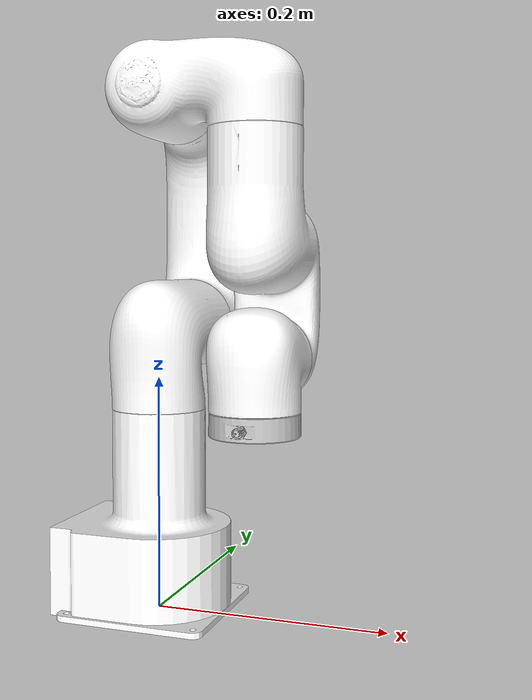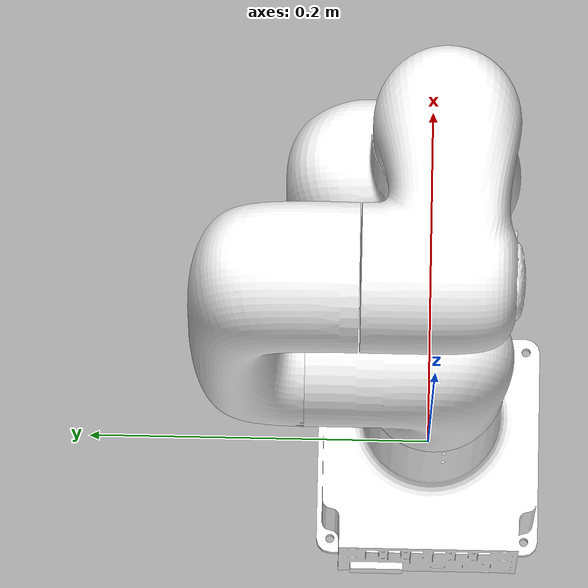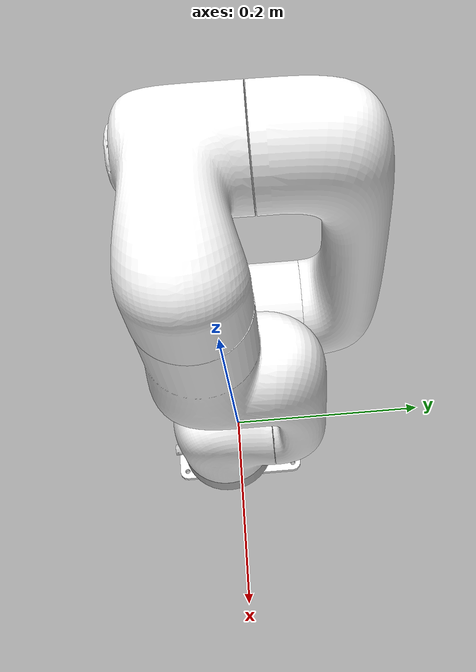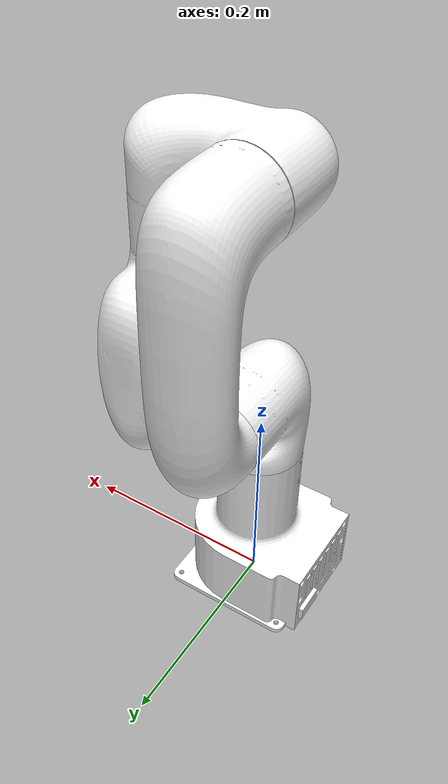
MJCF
<?xml version="1.0" ?>
<mujoco model="ufactory_lite6">
	<compiler meshdir="ufactory_lite6/meshes" texturedir="ufactory_lite6/textures" angle="radian" autolimits="true" balanceinertia="true" boundmass="0.000001" boundinertia="0.000001"/>
	<default>
		<default class="visual">
			<geom contype="0" conaffinity="0"/>
		</default>
		<default class="collision">
			<geom rgba="1.0 0.0 0.0 0.0"/>
		</default>
	</default>
	<asset>
		<mesh name="link_base" file="stl/link_base.stl" scale="1.0 1.0 1.0"/>
		<mesh name="link_base_c" file="stl/link_base_c.stl" scale="1.0 1.0 1.0"/>
		<mesh name="link1" file="stl/link1.stl" scale="1.0 1.0 1.0"/>
		<mesh name="link1_c" file="stl/link1_c.stl" scale="1.0 1.0 1.0"/>
		<mesh name="link2" file="stl/link2.stl" scale="1.0 1.0 1.0"/>
		<mesh name="link2_c" file="stl/link2_c.stl" scale="1.0 1.0 1.0"/>
		<mesh name="link3" file="stl/link3.stl" scale="1.0 1.0 1.0"/>
		<mesh name="link3_c" file="stl/link3_c.stl" scale="1.0 1.0 1.0"/>
		<mesh name="link4" file="stl/link4.stl" scale="1.0 1.0 1.0"/>
		<mesh name="link4_c" file="stl/link4_c.stl" scale="1.0 1.0 1.0"/>
		<mesh name="link5" file="stl/link5.stl" scale="1.0 1.0 1.0"/>
		<mesh name="link5_c" file="stl/link5_c.stl" scale="1.0 1.0 1.0"/>
		<mesh name="link6" file="stl/link6.stl" scale="1.0 1.0 1.0"/>
		<mesh name="link6_c" file="stl/link6_c.stl" scale="1.0 1.0 1.0"/>
		<material name="white" rgba="1.0 1.0 1.0 1.0" emission="0.0" specular="0.5"/>
		<material name="silver" rgba="0.753000020980835 0.753000020980835 0.753000020980835 1.0" emission="0.0" specular="0.5"/>
	</asset>
	<worldbody>
		<body name="ufactory_lite6" pos="0.0 0.0 0.0" quat="1.0 0.0 0.0 0.0">
			<body name="link_base" pos="0.0 0.0 0.0" quat="1.0 0.0 0.0 0.0">
				<geom name="Geom_0" type="mesh" pos="-0.00811403151601553 0.00012629086268134415 0.060304343700408936" quat="0.7137697339057922 0.0576835535466671 0.05623916536569595 0.6957316994667053" mesh="link_base" material="white" class="visual"/>
				<geom name="Geom_1" type="mesh" pos="-0.008289423771202564 0.0001413146819686517 0.06018092855811119" quat="0.7142898440361023 0.05834497511386871 0.056573424488306046 0.695115327835083" mesh="link_base_c" class="collision"/>
				<body name="link1" pos="0.0 0.0 0.2434999942779541" quat="1.0 0.0 0.0 0.0">
					<inertial mass="1.4110000133514404" pos="-0.0003600000054575503 0.04194999858736992 -0.0024999999441206455" quat="0.6080588698387146 0.7923488020896912 -0.04387069121003151 0.022871794179081917" diaginertia="0.001452759956009686 0.0013527499977499247 0.0008533549844287336"/>
					<geom name="Geom_2" type="mesh" pos="-1.670528763497714e-05 0.018966035917401314 -0.012274348177015781" quat="0.4585404694080353 0.8886730670928955 -0.0008872973266988993 1.001599866867764e-05" mesh="link1" material="white" class="visual"/>
					<geom name="Geom_3" type="mesh" pos="-7.627058948855847e-05 0.018666492775082588 -0.012476584874093533" quat="0.4599464535713196 0.8879438638687134 -0.002075828844681382 0.0007998690125532448" mesh="link1_c" class="collision"/>
					<joint name="joint1" type="hinge" pos="0.0 0.0 0.0" range="-6.28318977355957 6.28318977355957" axis="0.0 0.0 1.0"/>
					<body name="link2" pos="0.0 0.0 0.0" quat="-0.5 0.5 0.5 0.5">
						<inertial mass="1.340000033378601" pos="0.17900000512599945 0.0 0.058400001376867294" quat="0.41756099462509155 0.5716190338134766 0.5695850253105164 0.41769298911094666" diaginertia="0.005609709769487381 0.005215200129896402 0.0012201799545437098"/>
						<geom name="Geom_4" type="mesh" pos="0.11914435029029846 -2.0014167034787533e-07 0.09462665766477585" quat="0.4695463478565216 0.528713583946228 0.5286215543746948 0.46962475776672363" mesh="link2" material="white" class="visual"/>
						<geom name="Geom_5" type="mesh" pos="0.11872807890176773 -3.716583159985021e-05 0.09475217014551163" quat="0.47368741035461426 0.5243798494338989 0.5319745540618896 0.4665287733078003" mesh="link2_c" class="collision"/>
						<joint name="joint2" type="hinge" pos="0.0 0.0 0.0" range="-2.617990016937256 2.617990016937256" axis="0.0 0.0 1.0"/>
						<body name="link3" pos="0.20020000636577606 0.0 0.0" quat="-2.5973411084123654e-06 -0.707105278968811 -0.7071082592010498 -2.597351112854085e-06">
							<inertial mass="0.953000009059906" pos="0.07199999690055847 -0.0357000008225441 -0.0010000000474974513" quat="0.12825897336006165 0.6629629135131836 -0.1672559678554535 0.7183699011802673" diaginertia="0.0018521000165492296 0.0017554600490257144 0.0007038069888949394"/>
							<geom name="Geom_6" type="mesh" pos="0.03540295362472534 -0.0005778800114057958 -0.0002281995548401028" quat="0.537189781665802 0.48910239338874817 0.49653613567352295 0.47503456473350525" mesh="link3" material="white" class="visual"/>
							<geom name="Geom_7" type="mesh" pos="0.035833150148391724 -0.0006497979629784822 -0.0007481405045837164" quat="0.542108952999115 0.4854326546192169 0.4935319125652313 0.4763394296169281" mesh="link3_c" class="collision"/>
							<joint name="joint3" type="hinge" pos="0.0 0.0 0.0" range="-0.061087001115083694 5.235990047454834" axis="0.0 0.0 1.0"/>
							<body name="link4" pos="0.08699999749660492 -0.2276100069284439 0.0" quat="0.707105278968811 0.7071082592010498 0.0 0.0">
								<inertial mass="1.284000039100647" pos="-0.0020000000949949026 -0.02850000001490116 -0.08129999786615372" quat="0.9752478003501892 0.2210899442434311 0.0020349796395748854 -0.002621779451146722" diaginertia="0.0037050300743430853 0.0034909099340438843 0.001095860032364726"/>
								<geom name="Geom_8" type="mesh" pos="6.908006184858095e-07 -0.02948177233338356 -0.08226402848958969" quat="0.9724439382553101 0.23313680291175842 8.74612760526361e-06 9.16273711482063e-05" mesh="link4" material="white" class="visual"/>
								<geom name="Geom_9" type="mesh" pos="-0.0004215897643007338 -0.027776189148426056 -0.08668722212314606" quat="0.9733046293258667 0.22926412522792816 -0.00900206994265318 0.005916018504649401" mesh="link4_c" class="collision"/>
								<joint name="joint4" type="hinge" pos="0.0 0.0 0.0" range="-6.28318977355957 6.28318977355957" axis="0.0 0.0 1.0"/>
								<body name="link5" pos="0.0 0.0 0.0" quat="0.7071067690849304 0.7071067690849304 0.0 0.0">
									<inertial mass="0.8040000200271606" pos="0.0 0.009999999776482582 0.0019000000320374966" quat="0.714230477809906 0.6963884234428406 -0.053193334490060806 0.04569973051548004" diaginertia="0.0005675529828295112 0.0005292660207487643 0.000507680990267545"/>
									<geom name="Geom_10" type="mesh" pos="-1.1146202041345532e-06 -0.0012134675635024905 0.00042929037590511143" quat="0.5423890948295593 0.45218273997306824 -0.45334842801094055 0.5438933968544006" mesh="link5" material="white" class="visual"/>
									<geom name="Geom_11" type="mesh" pos="-1.1064570571761578e-05 -0.0012402086285874248 0.00046095746802166104" quat="0.5538026094436646 0.4588753581047058 -0.44382670521736145 0.5345596075057983" mesh="link5_c" class="collision"/>
									<joint name="joint5" type="hinge" pos="0.0 0.0 0.0" range="-2.1642000675201416 2.1642000675201416" axis="0.0 0.0 1.0"/>
									<body name="link6" pos="0.0 0.0625 0.0" quat="0.7071067690849304 -0.7071067690849304 0.0 0.0">
										<inertial mass="0.12999999523162842" pos="0.0 -0.0019399999873712659 -0.010200000368058681" quat="-0.03760230168700218 0.7040570378303528 0.044683802872896194 0.7077380418777466" diaginertia="0.00014814799942541867 8.57756967889145e-05 7.71412014728412e-05"/>
										<geom name="Geom_12" type="mesh" pos="-3.579038931889045e-08 0.0011157860280945897 -0.011585084721446037" quat="0.49810266494750977 0.5018901824951172 -0.5018754601478577 0.49811747670173645" mesh="link6" material="silver" class="visual"/>
										<geom name="Geom_13" type="mesh" pos="5.991408397676423e-05 3.235737676732242e-05 -0.011802943423390388" quat="0.2927654981613159 0.6427192091941833 -0.29457399249076843 0.6437597274780273" mesh="link6_c" class="collision"/>
										<joint name="joint6" type="hinge" pos="0.0 0.0 0.0" range="-6.28318977355957 6.28318977355957" axis="0.0 0.0 1.0"/>
									</body>
								</body>
							</body>
						</body>
					</body>
				</body>
			</body>
		</body>
	</worldbody>
	<equality/>
</mujoco>
